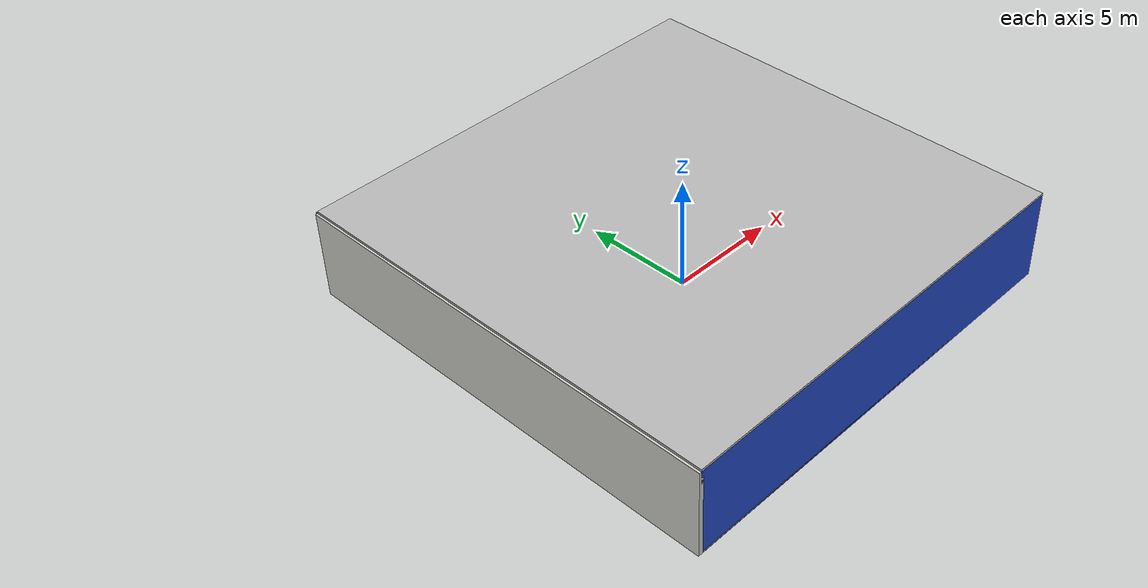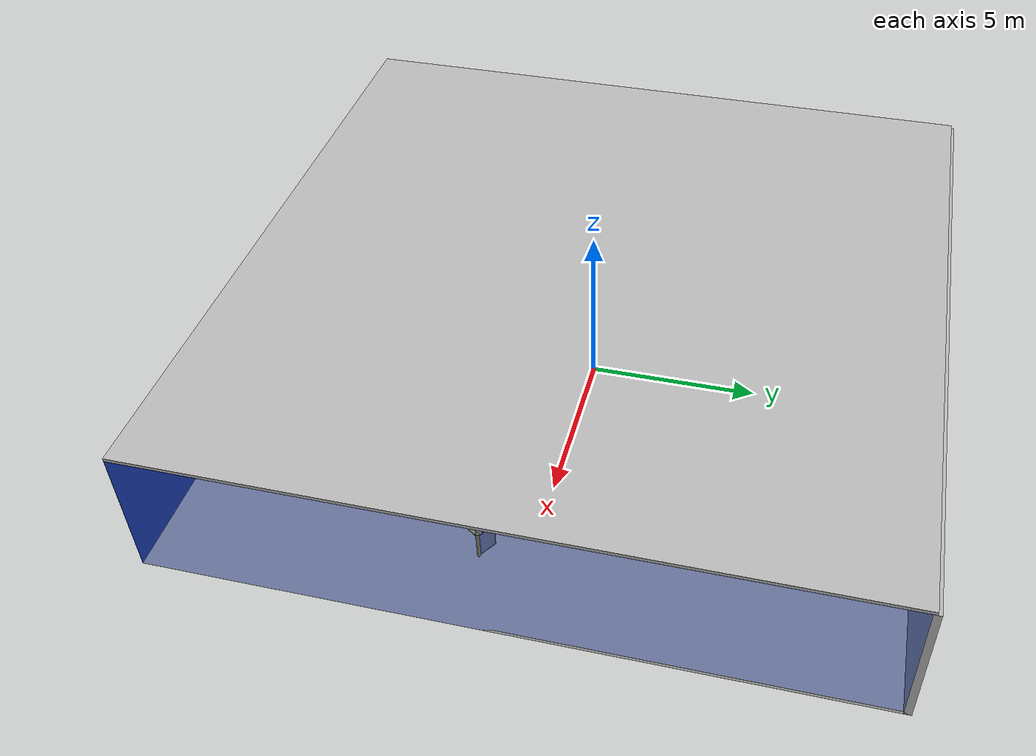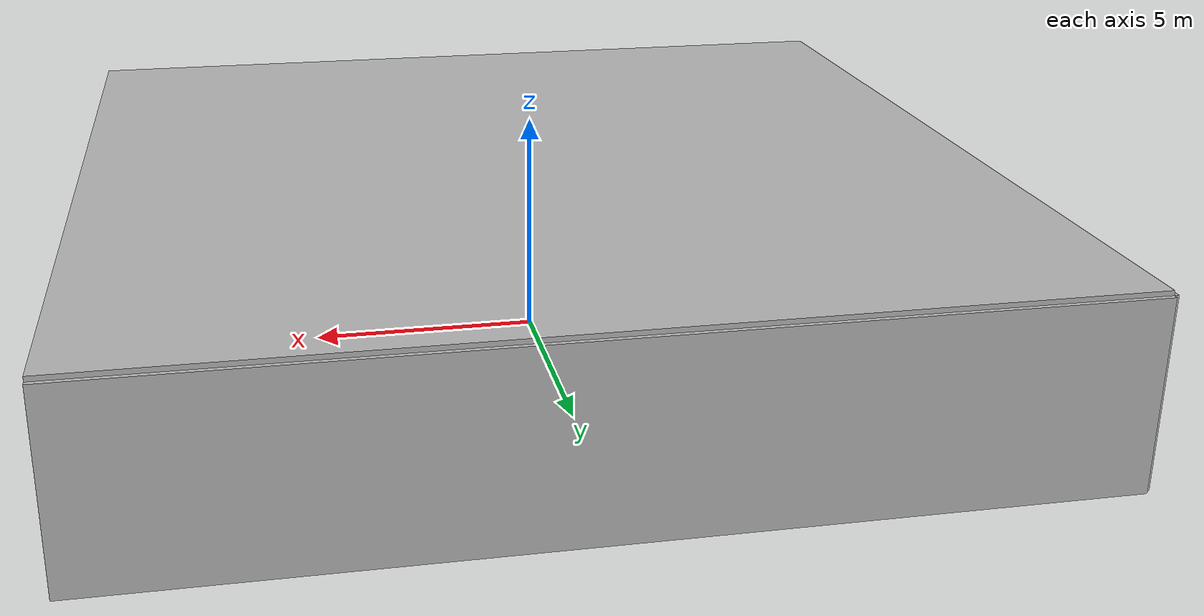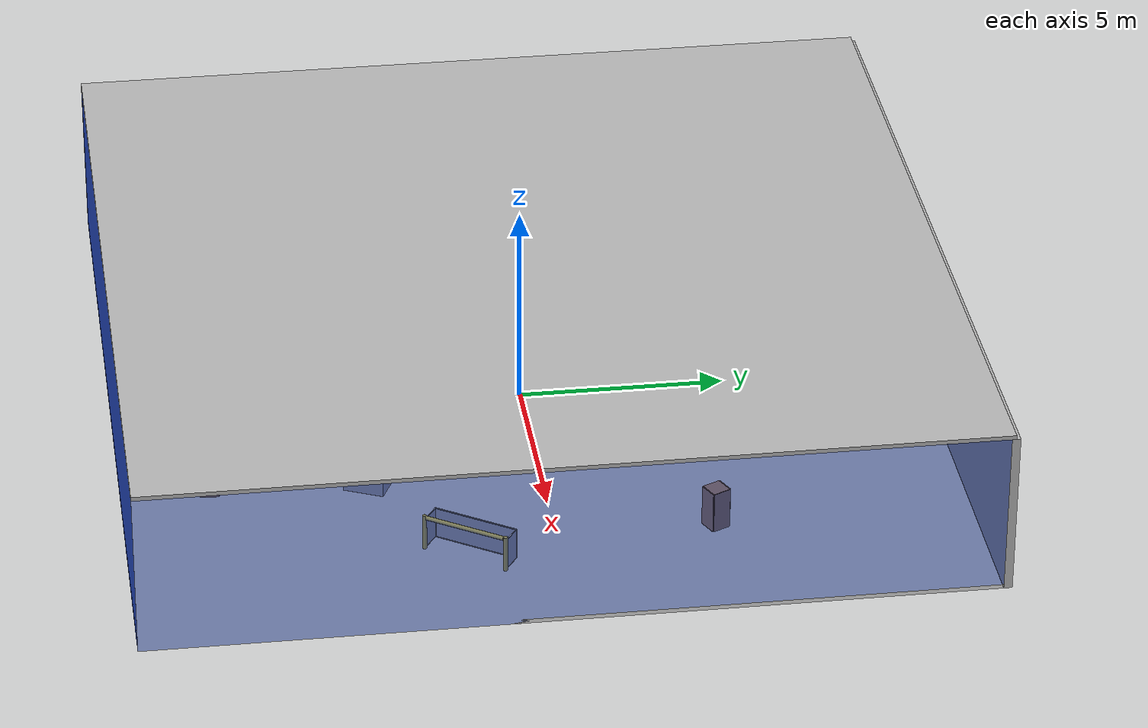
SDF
<sdf version="1.4">
 <world name="default">
  <physics type="ode">
   <max_step_size>0.001</max_step_size>
   <real_time_factor>1</real_time_factor>
   <real_time_update_rate>1000</real_time_update_rate>
   <gravity>0 0 -9.8</gravity>
  </physics>
  <scene><ambient>0.4 0.4 0.4 1</ambient><background>0.7 0.7 0.7 1</background><shadows>1</shadows></scene>
  <model name="Surrounding">
   <static>1</static>
   <link name="Ceiling">
    <collision name="Ceiling_Collision"><geometry><box><size>20 20 0.1</size></box></geometry></collision>
    <visual name="Ceiling_Visual">
     <geometry><box><size>20 20 0.1</size></box></geometry>
     <material>
      <script><uri>file://media/materials/scripts/gazebo.material</uri><name>Gazebo/PioneerBody</name></script>
     </material>
    </visual>
    <pose>0 0 4.05 0 0 0</pose>
   </link>
   <link name="Wall_South">
    <collision name="Wall_South_Collision">
     <geometry><box><size>20 0 4</size></box></geometry>
     <pose>0 0 2 0 -0 0</pose>
    </collision>
    <visual name="Wall_South_Visual">
     <pose>0 0 2 0 -0 0</pose>
     <geometry><box><size>20 0 4</size></box></geometry>
     <material>
      <script><uri>file://media/materials/scripts/gazebo.material</uri><name>Gazebo/BlueGlow</name></script>
     </material>
    </visual>
    <velocity_decay><linear>0</linear><angular>0</angular></velocity_decay>
    <pose>0 -10 0 0 -0 0</pose>
   </link>
   <link name="Wall_East">
    <collision name="Wall_21_Collision">
     <geometry><box><size>20 0 4</size></box></geometry>
     <pose>0 0 2 0 -0 0</pose>
    </collision>
    <visual name="Wall_21_Visual">
     <pose>0 0 2 0 -0 0</pose>
     <geometry><box><size>20 0 4</size></box></geometry>
     <material>
      <script><uri>file://media/materials/scripts/gazebo.material</uri><name>Gazebo/BlueTransparent</name></script>
     </material>
    </visual>
    <velocity_decay><linear>0</linear><angular>0</angular></velocity_decay>
    <pose>10 0 0 0 -0 1.5708</pose>
   </link>
   <link name="Wall_North">
    <collision name="Wall_22_Collision">
     <geometry><box><size>20 0.2 4</size></box></geometry>
     <pose>0 0 2 0 -0 0</pose>
    </collision>
    <visual name="Wall_22_Visual">
     <pose>0 0 2 0 -0 0</pose>
     <geometry><box><size>20 0.2 4</size></box></geometry>
     <material>
      <script><uri>file://media/materials/scripts/gazebo.material</uri><name>Gazebo/JointAnchor</name></script>
     </material>
    </visual>
    <velocity_decay><linear>0</linear><angular>0</angular></velocity_decay>
    <pose>0 10 0 0 -0 0</pose>
   </link>
   <link name="Wall_West">
    <collision name="Wall_23_Collision">
     <geometry><box><size>20 0.2 4</size></box></geometry>
     <pose>0 0 2 0 -0 0</pose>
    </collision>
    <visual name="Wall_23_Visual">
     <pose>0 0 2 0 -0 0</pose>
     <geometry><box><size>20 0.2 4</size></box></geometry>
     <material>
      <script><uri>file://media/materials/scripts/gazebo.material</uri><name>Gazebo/CeilingTiled</name></script>
     </material>
    </visual>
    <velocity_decay><linear>0</linear><angular>0</angular></velocity_decay>
    <pose>-10 0 0 0 0 -1.5708</pose>
   </link>
   <link name="Ground_link">
    <collision name="collision">
     <pose>0 0 .05 0 -0 0</pose>
     <geometry><box><size>20 20 0.1</size></box></geometry>
    </collision>
    <visual name="visual">
     <pose>0 0 .05 0 -0 0</pose>
     <geometry><box><size>20 20 0.1</size></box></geometry>
     <material>
      <script><uri>file://media/materials/scripts/gazebo.material</uri><name>Gazebo/GreyTransparent</name></script>
     </material>
    </visual>
   </link>
   <static>1</static>
  </model>
  <spherical_coordinates>
   <surface_model>EARTH_WGS84</surface_model>
   <latitude_deg>0</latitude_deg>
   <longitude_deg>0</longitude_deg>
   <elevation>0</elevation>
   <heading_deg>0</heading_deg>
  </spherical_coordinates>
  <light name="lightball_0" type="diffuse">
   <diffuse>0.8 0.8 0.8 1</diffuse>
   <specular>0.2 0.2 0.2 1</specular>
   <attenuation>
    <range>100</range>
    <constant>0.7</constant>
    <linear>0.01</linear>
    <quadratic>0.001</quadratic>
   </attenuation>
   <direction>-0.5 0.1 -0.9</direction>
   <pose>8.49524005521 1.33973600322 0.921428240612 0 0 0</pose>
  </light>
  <light name="lightball_1" type="diffuse">
   <diffuse>0.8 0.8 0.8 1</diffuse>
   <specular>0.2 0.2 0.2 1</specular>
   <attenuation>
    <range>100</range>
    <constant>0.7</constant>
    <linear>0.01</linear>
    <quadratic>0.001</quadratic>
   </attenuation>
   <direction>-0.5 0.1 -0.9</direction>
   <pose>7.37309646661 7.42097804458 1.71176366554 0 0 0</pose>
  </light>
  <light name="lightball_2" type="diffuse">
   <diffuse>0.8 0.8 0.8 1</diffuse>
   <specular>0.2 0.2 0.2 1</specular>
   <attenuation>
    <range>100</range>
    <constant>0.7</constant>
    <linear>0.01</linear>
    <quadratic>0.001</quadratic>
   </attenuation>
   <direction>-0.5 0.1 -0.9</direction>
   <pose>-5.49147295175 6.09265158425 0.578788031566 0 0 0</pose>
  </light>
  <light name="lightball_3" type="diffuse">
   <diffuse>0.8 0.8 0.8 1</diffuse>
   <specular>0.2 0.2 0.2 1</specular>
   <attenuation>
    <range>100</range>
    <constant>0.7</constant>
    <linear>0.01</linear>
    <quadratic>0.001</quadratic>
   </attenuation>
   <direction>-0.5 0.1 -0.9</direction>
   <pose>-9.92601262243 -3.64130408802 0.662903331092 0 0 0</pose>
  </light>
  <light name="lightball_4" type="diffuse">
   <diffuse>0.8 0.8 0.8 1</diffuse>
   <specular>0.2 0.2 0.2 1</specular>
   <attenuation>
    <range>100</range>
    <constant>0.7</constant>
    <linear>0.01</linear>
    <quadratic>0.001</quadratic>
   </attenuation>
   <direction>-0.5 0.1 -0.9</direction>
   <pose>0.1453449796 9.35339373654 3.76385929044 0 0 0</pose>
  </light>
  <light name="lightball_5" type="diffuse">
   <diffuse>0.8 0.8 0.8 1</diffuse>
   <specular>0.2 0.2 0.2 1</specular>
   <attenuation>
    <range>100</range>
    <constant>0.7</constant>
    <linear>0.01</linear>
    <quadratic>0.001</quadratic>
   </attenuation>
   <direction>-0.5 0.1 -0.9</direction>
   <pose>-6.62682235782 -8.73327503535 2.34853288984 0 0 0</pose>
  </light>
  <light name="lightball_6" type="diffuse">
   <diffuse>0.8 0.8 0.8 1</diffuse>
   <specular>0.2 0.2 0.2 1</specular>
   <attenuation>
    <range>100</range>
    <constant>0.7</constant>
    <linear>0.01</linear>
    <quadratic>0.001</quadratic>
   </attenuation>
   <direction>-0.5 0.1 -0.9</direction>
   <pose>2.262730872 -8.75283961874 3.61454955327 0 0 0</pose>
  </light>
  <light name="lightball_7" type="diffuse">
   <diffuse>0.8 0.8 0.8 1</diffuse>
   <specular>0.2 0.2 0.2 1</specular>
   <attenuation>
    <range>100</range>
    <constant>0.7</constant>
    <linear>0.01</linear>
    <quadratic>0.001</quadratic>
   </attenuation>
   <direction>-0.5 0.1 -0.9</direction>
   <pose>7.1732698752 0.333126164185 0.904901880717 0 0 0</pose>
  </light>
  <light name="lightball_8" type="diffuse">
   <diffuse>0.8 0.8 0.8 1</diffuse>
   <specular>0.2 0.2 0.2 1</specular>
   <attenuation>
    <range>100</range>
    <constant>0.7</constant>
    <linear>0.01</linear>
    <quadratic>0.001</quadratic>
   </attenuation>
   <direction>-0.5 0.1 -0.9</direction>
   <pose>-4.49366579572 8.66831885335 2.58559871843 0 0 0</pose>
  </light>
  <light name="lightball_9" type="diffuse">
   <diffuse>0.8 0.8 0.8 1</diffuse>
   <specular>0.2 0.2 0.2 1</specular>
   <attenuation>
    <range>100</range>
    <constant>0.7</constant>
    <linear>0.01</linear>
    <quadratic>0.001</quadratic>
   </attenuation>
   <direction>-0.5 0.1 -0.9</direction>
   <pose>7.67256544523 0.869458366739 1.88967344629 0 0 0</pose>
  </light>
  <light name="lightball_10" type="diffuse">
   <diffuse>0.8 0.8 0.8 1</diffuse>
   <specular>0.2 0.2 0.2 1</specular>
   <attenuation>
    <range>100</range>
    <constant>0.7</constant>
    <linear>0.01</linear>
    <quadratic>0.001</quadratic>
   </attenuation>
   <direction>-0.5 0.1 -0.9</direction>
   <pose>-5.69367659977 2.07796141423 3.62246977028 0 0 0</pose>
  </light>
  <include>
   <uri>model://textured_shapes</uri>
   <pose>-7.57874734745 7.11896516399 0 0 0 0.863472268474</pose>
  </include>
  <include>
   <uri>model://robocup_3Dsim_goal</uri>
   <pose>-4.07599044995 -5.1672873276 0 0 0 0.246668378569</pose>
  </include>
  <include><uri>model://cabinet</uri><pose>-3.53204185653 1.13402564922 0 0 0 1.73853755371</pose></include>
  <include>
   <uri>model://robocup_3Dsim_goal</uri>
   <pose>-1.0169496494 -7.29702310971 0 0 0 2.96597208925</pose>
  </include>
  <include><uri>model://cabinet</uri><pose>-1.26203330799 0.744430421714 0 0 0 2.18711339237</pose></include>
  <include>
   <uri>model://textured_shapes</uri>
   <pose>1.40511692284 -3.36359520309 0 0 0 1.14228979329</pose>
  </include>
  <include><uri>model://cabinet</uri><pose>3.45860571292 -7.88337718168 0 0 0 1.49760183382</pose></include>
  <include>
   <uri>model://robocup_3Dsim_goal</uri>
   <pose>7.16584687272 -2.22576687581 0 0 0 2.55243765412</pose>
  </include>
  <include><uri>model://cabinet</uri><pose>6.45571268661 3.78179930631 0 0 0 0.44387899296</pose></include>
 </world>
</sdf>

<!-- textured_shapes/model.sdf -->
<sdf version="1.6">
  <model name="textured_shapes">
    <pose>0 0 0.5 0 0 0</pose>
    <link name="box">
      <pose>0 -1.5 0 0 0 0</pose>
      <collision name="collision">
        <geometry>
          <box>
            <size>1 1 1</size>
          </box>
        </geometry>
      </collision>
      <visual name="visual">
        <geometry>
          <box>
            <size>1 1 1</size>
          </box>
        </geometry>
        <material>
          <script>
            <uri>model://../model_source/models/textured_shapes/materials/scripts</uri>
            <uri>model://../model_source/models/textured_shapes/materials/textures</uri>
            <name>TexturedShape/Squares</name>
          </script>
        </material>
      </visual>
    </link>
    <link name="sphere">
      <collision name="collision">
        <geometry>
          <sphere>
            <radius>0.5</radius>
          </sphere>
        </geometry>
      </collision>
      <visual name="visual">
        <geometry>
          <sphere>
            <radius>0.5</radius>
          </sphere>
        </geometry>
        <material>
          <script>
            <uri>model://../model_source/models/textured_shapes/materials/scripts</uri>
            <uri>model://../model_source/models/textured_shapes/materials/textures</uri>
            <name>TexturedShape/Squares</name>
          </script>
        </material>
      </visual>
    </link>
    <link name="cylinder">
      <pose>0 1.5 0 0 0 0</pose>
      <collision name="collision">
        <geometry>
          <cylinder>
            <radius>0.5</radius>
            <length>1</length>
          </cylinder>
        </geometry>
      </collision>
      <visual name="visual">
        <geometry>
          <cylinder>
            <radius>0.5</radius>
            <length>1</length>
          </cylinder>
        </geometry>
        <material>
          <script>
            <uri>model://../model_source/models/textured_shapes/materials/scripts</uri>
            <uri>model://../model_source/models/textured_shapes/materials/textures</uri>
            <name>TexturedShape/Squares</name>
          </script>
        </material>
      </visual>
    </link>
  </model>
</sdf>

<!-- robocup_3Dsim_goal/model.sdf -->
<sdf version="1.5">
  <model name="robocup_3d_goal">
    <static>true</static>
    <link name="left_post">
      <pose>0 1.05 0.45 0 0 0</pose>
      <collision name="collision">
        <geometry>
          <cylinder>
            <radius>0.05</radius>
            <length>0.9</length>
          </cylinder>
        </geometry>
      </collision>
      <visual name="visual">
        <geometry>
          <cylinder>
            <radius>0.05</radius>
            <length>0.9</length>
          </cylinder>
        </geometry>
        <material>
          <script>
            <uri>file://media/materials/scripts/gazebo.material</uri>
            <name>Gazebo/ZincYellow</name>
          </script>
        </material>
      </visual>
    </link>
    <link name="left_support_horiz_lower">
      <pose>0.30 1.05 0.01 0 0 0</pose>
      <collision name="collision">
        <geometry>
          <box>
            <size>0.50 0.02 0.02</size>
          </box>
        </geometry>
      </collision>
      <visual name="visual">
        <geometry>
          <box>
            <size>0.50 0.02 0.02</size>
          </box>
        </geometry>
        <material>
          <script>
            <uri>file://media/materials/scripts/gazebo.material</uri>
            <name>Gazebo/White</name>
          </script>
        </material>
      </visual>
    </link>
    <link name="left_support_horiz_upper">
      <pose>0.30 1.05 0.79 0 0 0</pose>
      <collision name="collision">
        <geometry>
          <box>
            <size>0.50 0.02 0.02</size>
          </box>
        </geometry>
      </collision>
      <visual name="visual">
        <geometry>
          <box>
            <size>0.50 0.02 0.02</size>
          </box>
        </geometry>
        <material>
          <script>
            <uri>file://media/materials/scripts/gazebo.material</uri>
            <name>Gazebo/White</name>
          </script>
        </material>
      </visual>
    </link>
    <link name="left_support_vertical">
      <pose>0.56 1.05 0.4 0 1.5708 0</pose>
      <collision name="collision">
        <geometry>
          <box>
            <size>0.80 0.02 0.02</size>
          </box>
        </geometry>
      </collision>
      <visual name="visual">
        <geometry>
          <box>
            <size>0.80 0.02 0.02</size>
          </box>
        </geometry>
        <material>
          <script>
            <uri>file://media/materials/scripts/gazebo.material</uri>
            <name>Gazebo/White</name>
          </script>
        </material>
      </visual>
    </link>
    <link name="right_support_horiz_lower">
      <pose>0.30 -1.05 0.01 0 0 0</pose>
      <collision name="collision">
        <geometry>
          <box>
            <size>0.50 0.02 0.02</size>
          </box>
        </geometry>
      </collision>
      <visual name="visual">
        <geometry>
          <box>
            <size>0.50 0.02 0.02</size>
          </box>
        </geometry>
        <material>
          <script>
            <uri>file://media/materials/scripts/gazebo.material</uri>
            <name>Gazebo/White</name>
          </script>
        </material>
      </visual>
    </link>
    <link name="right_support_horiz_upper">
      <pose>0.30 -1.05 0.79 0 0 0</pose>
      <collision name="collision">
        <geometry>
          <box>
            <size>0.50 0.02 0.02</size>
          </box>
        </geometry>
      </collision>
      <visual name="visual">
        <geometry>
          <box>
            <size>0.50 0.02 0.02</size>
          </box>
        </geometry>
        <material>
          <script>
            <uri>file://media/materials/scripts/gazebo.material</uri>
            <name>Gazebo/White</name>
          </script>
        </material>
      </visual>
    </link>
    <link name="right_support_vertical">
      <pose>0.56 -1.05 0.4 0 1.5708 0</pose>
      <collision name="collision">
        <geometry>
          <box>
            <size>0.80 0.02 0.02</size>
          </box>
        </geometry>
      </collision>
      <visual name="visual">
        <geometry>
          <box>
            <size>0.80 0.02 0.02</size>
          </box>
        </geometry>
        <material>
          <script>
            <uri>file://media/materials/scripts/gazebo.material</uri>
            <name>Gazebo/White</name>
          </script>
        </material>
      </visual>
    </link>
    <link name="center_support_horiz_lower">
      <pose>0.56 0 0.01 0 1.5708 0</pose>
      <collision name="collision">
        <geometry>
          <box>
            <size>0.02 2.08 0.02</size>
          </box>
        </geometry>
      </collision>
      <visual name="visual">
        <geometry>
          <box>
            <size>0.02 2.08 0.02</size>
          </box>
        </geometry>
        <material>
          <script>
            <uri>file://media/materials/scripts/gazebo.material</uri>
            <name>Gazebo/White</name>
          </script>
        </material>
      </visual>
    </link>
    <link name="center_support_horiz_upper">
      <pose>0.56 0 0.79 0 1.5708 0</pose>
      <collision name="collision">
        <geometry>
          <box>
            <size>0.02 2.08 0.02</size>
          </box>
        </geometry>
      </collision>
      <visual name="visual">
        <geometry>
          <box>
            <size>0.02 2.08 0.02</size>
          </box>
        </geometry>
        <material>
          <script>
            <uri>file://media/materials/scripts/gazebo.material</uri>
            <name>Gazebo/White</name>
          </script>
        </material>
      </visual>
    </link>
    <link name="right_post">
      <pose>0 -1.05 0.45 0 0 0</pose>
      <collision name="collision">
        <geometry>
          <cylinder>
            <radius>0.05</radius>
            <length>0.9</length>
          </cylinder>
        </geometry>
      </collision>
      <visual name="visual">
        <geometry>
          <cylinder>
            <radius>0.05</radius>
            <length>0.9</length>
          </cylinder>
        </geometry>
        <material>
          <script>
            <uri>file://media/materials/scripts/gazebo.material</uri>
            <name>Gazebo/ZincYellow</name>
          </script>
        </material>
      </visual>
    </link>
    <link name="crossbar">
      <pose>0 0 0.85 1.57 1.57 0</pose>
      <collision name="collision">
        <geometry>
          <cylinder>
            <radius>0.05</radius>
            <length>2.0</length>
          </cylinder>
        </geometry>
      </collision>
      <visual name="visual">
        <geometry>
          <cylinder>
            <radius>0.05</radius>
            <length>2.0</length>
          </cylinder>
        </geometry>
        <material>
          <script>
            <uri>file://media/materials/scripts/gazebo.material</uri>
            <name>Gazebo/ZincYellow</name>
          </script>
        </material>
      </visual>
    </link>
    <link name="center_net">
      <pose>0.56 0 0.40 0 0 0</pose>
      <collision name="collision">
        <geometry>
          <box>
            <size>0.01 2.1 0.80</size>
          </box>
        </geometry>
      </collision>
      <visual name="visual">
        <geometry>
          <box>
            <size>0.01 2.1 0.80</size>
          </box>
        </geometry>
        <material>
          <script>
            <uri>model://../model_source/models/robocup09_spl_field/materials/scripts/</uri>
            <uri>model://../model_source/models/robocup09_spl_field/materials/textures/</uri>
            <name>RoboCup/Net</name>
          </script>
        </material>
      </visual>
    </link>
    <link name="left_net">
      <pose>0.30 1.05 0.40 0 0 0</pose>
      <collision name="collision">
        <geometry>
          <box>
            <size>0.50 0.01 0.76</size>
          </box>
        </geometry>
      </collision>
      <visual name="visual">
        <geometry>
          <box>
            <size>0.50 0.01 0.76</size>
          </box>
        </geometry>
        <material>
          <script>
            <uri>model://../model_source/models/robocup09_spl_field/materials/scripts/</uri>
            <uri>model://../model_source/models/robocup09_spl_field/materials/textures/</uri>
            <name>RoboCup/Net</name>
          </script>
        </material>
      </visual>
    </link>
    <link name="right_net">
      <pose>0.30 -1.05 0.40 0 0 0</pose>
      <collision name="collision">
        <geometry>
          <box>
            <size>0.50 0.01 0.76</size>
          </box>
        </geometry>
      </collision>
      <visual name="visual">
        <geometry>
          <box>
            <size>0.50 0.01 0.76</size>
          </box>
        </geometry>
        <material>
          <script>
            <uri>model://../model_source/models/robocup09_spl_field/materials/scripts/</uri>
            <uri>model://../model_source/models/robocup09_spl_field/materials/textures/</uri>
            <name>RoboCup/Net</name>
          </script>
        </material>
      </visual>
    </link>
  </model>
</sdf>

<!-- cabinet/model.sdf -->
<sdf version="1.5">
  <model name="cabinet">
    <static>true</static>
    <link name="cabinet_bottom_plate">
      <inertial>
        <pose>0 0 -1 0 0 0</pose>
        <inertia>
          <ixx>2.050000</ixx>
          <ixy>0</ixy>
          <ixz>0</ixz>
          <iyy>2.050000</iyy>
          <iyz>0</iyz>
          <izz>2.050000</izz>
        </inertia>
        <mass>25.000000</mass>
      </inertial>
      <collision name="cabinet_bottom_plate_geom">
        <pose>0 0 0.010000 0 0 0</pose>
        <geometry>
          <box>
            <size>0.450000 0.450000 0.020000</size>
          </box>
        </geometry>
      </collision>
      <visual name="cabinet_bottom_plate_geom_visual">
        <pose>0 0 0.010000 0 0 0</pose>
        <geometry>
          <box>
            <size>0.450000 0.450000 0.020000</size>
          </box>
        </geometry>
        <material>
          <script>
            <uri>model://media/materials/scripts/gazebo.material</uri>
            <name>Gazebo/Wood</name>
          </script>
        </material>
      </visual>
      <collision name="cabinet_bottom_plate_geom_cabinet_back_plate">
        <pose>0.235000 0 0.510000 0 0 0</pose>
        <geometry>
          <box>
            <size>0.020000 0.450000 1.020000</size>
          </box>
        </geometry>
      </collision>
      <visual name="cabinet_bottom_plate_geom_cabinet_back_plate_visual">
        <pose>0.235000 0 0.510000 0 0 0</pose>
        <geometry>
          <box>
            <size>0.020000 0.450000 1.020000</size>
          </box>
        </geometry>
        <material>
          <script>
            <uri>model://media/materials/scripts/gazebo.material</uri>
            <name>Gazebo/Wood</name>
          </script>
        </material>
      </visual>
      <collision name="cabinet_bottom_plate_geom_cabinet_left_plate">
        <pose>0 0.235000 0.510000 0 0 0</pose>
        <geometry>
          <box>
            <size>0.450000 0.020000 1.020000</size>
          </box>
        </geometry>
      </collision>
      <visual name="cabinet_bottom_plate_geom_cabinet_left_plate_visual">
        <pose>0 0.235000 0.510000 0 0 0</pose>
        <geometry>
          <box>
            <size>0.450000 0.020000 1.020000</size>
          </box>
        </geometry>
        <material>
          <script>
            <uri>model://media/materials/scripts/gazebo.material</uri>
            <name>Gazebo/Wood</name>
          </script>
        </material>
      </visual>
      <collision name="cabinet_bottom_plate_geom_cabinet_middle_plate">
        <pose>0 0 0.510000 0 0 0</pose>
        <geometry>
          <box>
            <size>0.450000 0.450000 0.020000</size>
          </box>
        </geometry>
      </collision>
      <visual name="cabinet_bottom_plate_geom_cabinet_middle_plate_visual">
        <pose>0 0 0.510000 0 0 0</pose>
        <geometry>
          <box>
            <size>0.450000 0.450000 0.020000</size>
          </box>
        </geometry>
        <material>
          <script>
            <uri>model://media/materials/scripts/gazebo.material</uri>
            <name>Gazebo/Wood</name>
          </script>
        </material>
      </visual>
      <collision name="cabinet_bottom_plate_geom_cabinet_right_plate">
        <pose>0 -0.235000 0.510000 0 0 0</pose>
        <geometry>
          <box>
            <size>0.450000 0.020000 1.020000</size>
          </box>
        </geometry>
      </collision>
      <visual name="cabinet_bottom_plate_geom_cabinet_right_plate_visual">
        <pose>0 -0.235000 0.510000 0 0 0</pose>
        <geometry>
          <box>
            <size>0.450000 0.020000 1.020000</size>
          </box>
        </geometry>
        <material>
          <script>
            <uri>model://media/materials/scripts/gazebo.material</uri>
            <name>Gazebo/Wood</name>
          </script>
        </material>
      </visual>
      <collision name="cabinet_bottom_plate_geom_cabinet_top_plate">
        <pose>0 0 1.010000 0 0 0</pose>
        <geometry>
          <box>
            <size>0.450000 0.450000 0.020000</size>
          </box>
        </geometry>
      </collision>
      <visual name="cabinet_bottom_plate_geom_cabinet_top_plate_visual">
        <pose>0 0 1.010000 0 0 0</pose>
        <geometry>
          <box>
            <size>0.450000 0.450000 0.020000</size>
          </box>
        </geometry>
        <material>
          <script>
            <uri>model://media/materials/scripts/gazebo.material</uri>
            <name>Gazebo/Wood</name>
          </script>
        </material>
      </visual>
    </link>
  </model>
</sdf>
